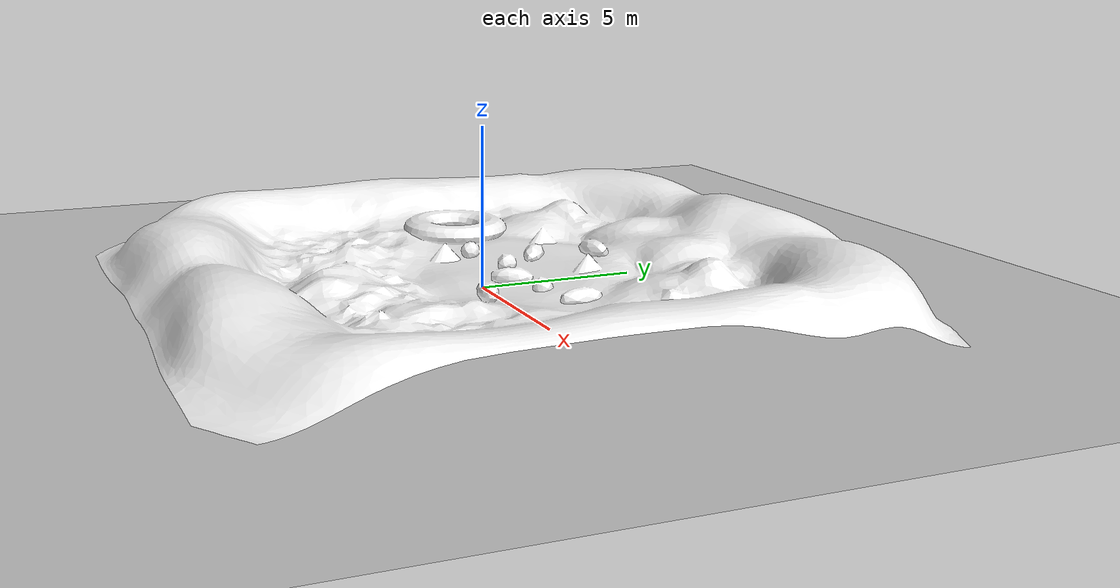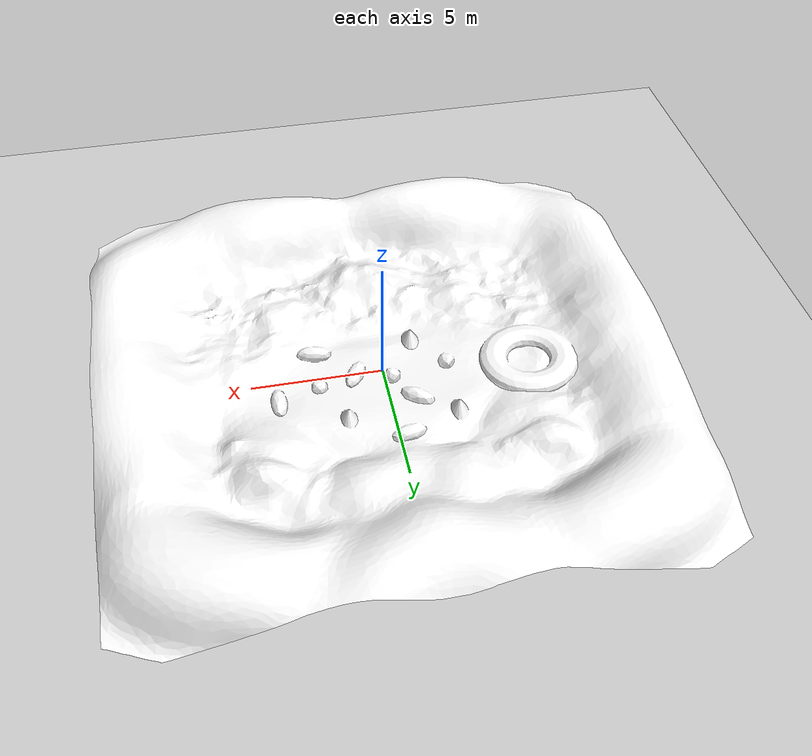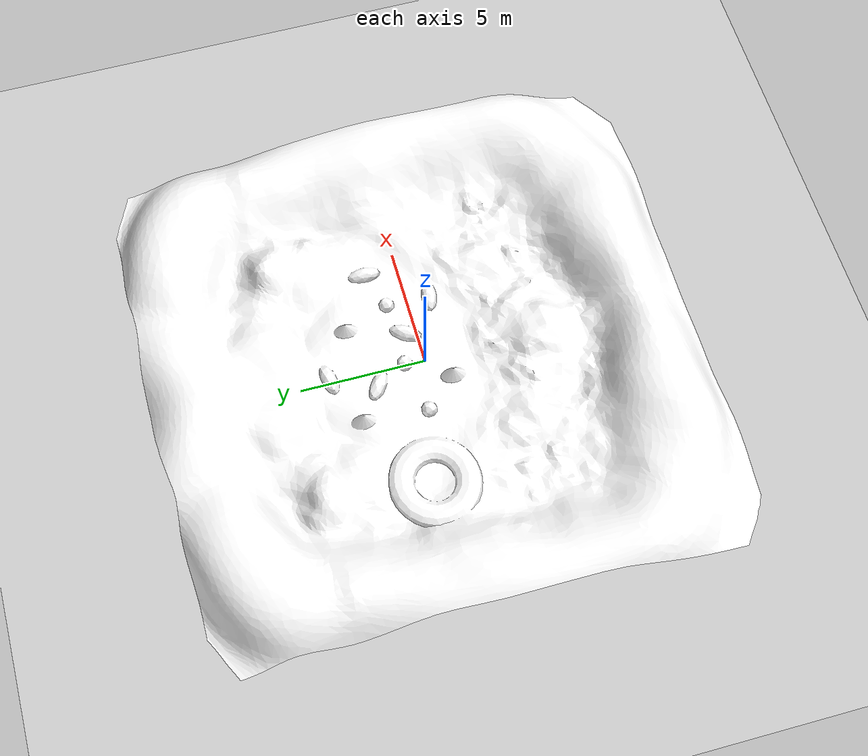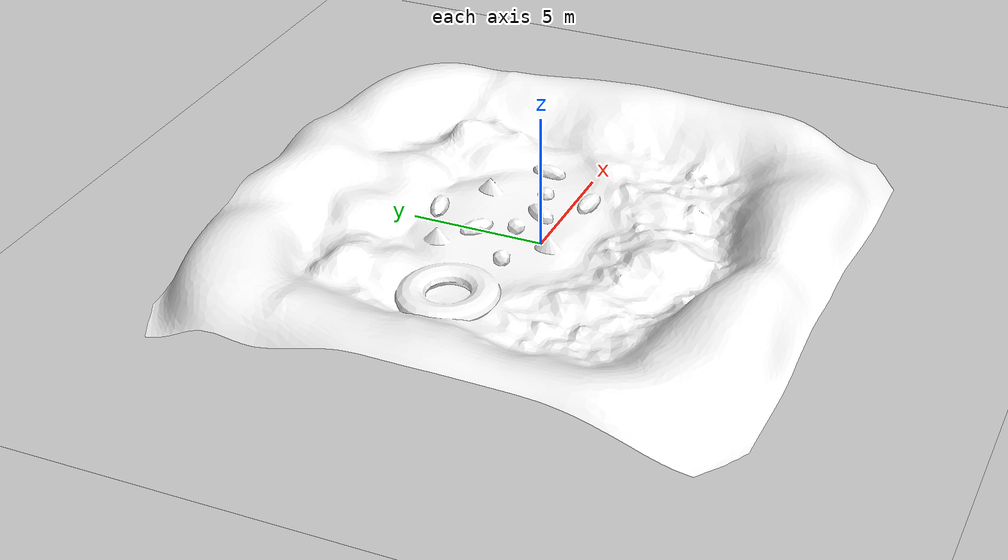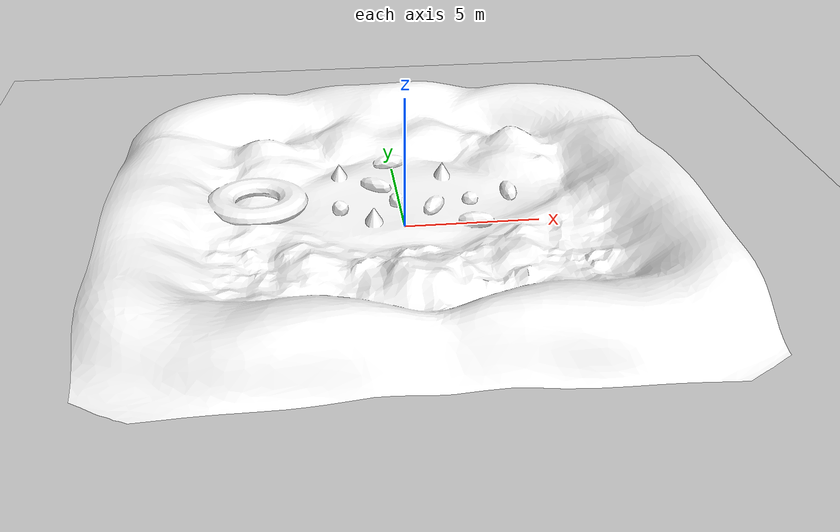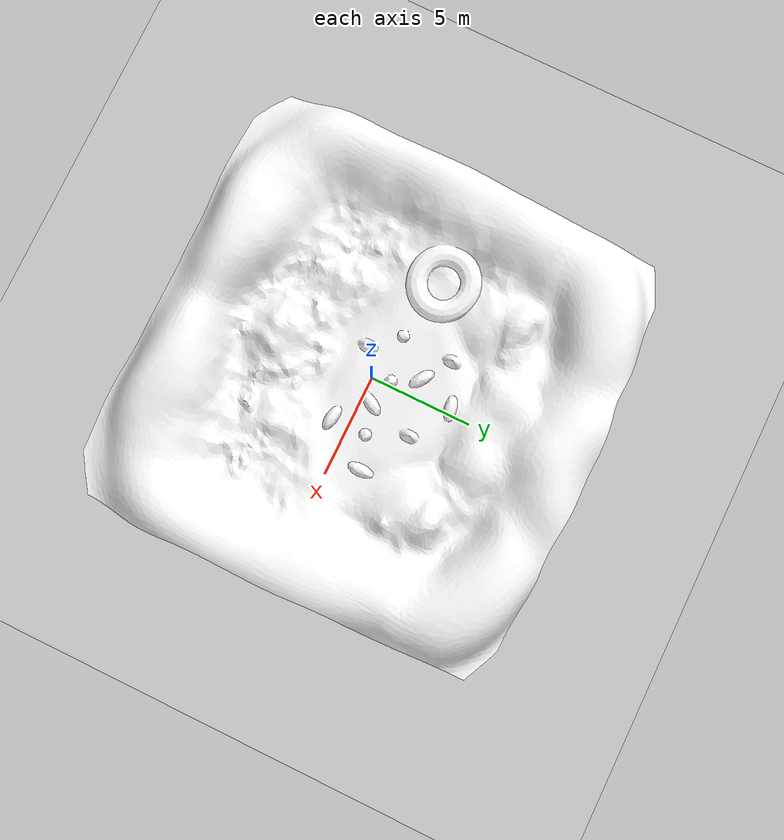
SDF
<sdf version="1.4">
 <world name="default">
  <light name="sun" type="directional">
   <pose>0 0 10 0 -0 0</pose>
   <diffuse>0.8 0.8 0.8 1</diffuse>
   <specular>0.2 0.2 0.2 1</specular>
   <attenuation>
    <range>1000</range>
    <constant>0.9</constant>
    <linear>0.01</linear>
    <quadratic>0.001</quadratic>
   </attenuation>
   <direction>-0.5 0.1 -0.9</direction>
   <spot><inner_angle>0</inner_angle><outer_angle>0</outer_angle><falloff>0</falloff></spot>
  </light>
  <model name="ground_plane">
   <static>1</static>
   <link name="link">
    <collision name="collision">
     <geometry><plane><normal>0 0 1</normal><size>100 100</size></plane></geometry>
     <surface>
      <contact><collide_bitmask>65535</collide_bitmask></contact>
      <friction><ode><mu>100</mu><mu2>50</mu2></ode></friction>
     </surface>
    </collision>
    <visual name="visual">
     <cast_shadows>0</cast_shadows>
     <geometry><plane><normal>0 0 1</normal><size>100 100</size></plane></geometry>
     <material>
      <script><uri>file://media/materials/scripts/gazebo.material</uri><name>Gazebo/Grey</name></script>
     </material>
    </visual>
   </link>
  </model>
  <gravity>0 0 -9.8</gravity>
  <magnetic_field>6e-06 2.3e-05 -4.2e-05</magnetic_field>
  <atmosphere type="adiabatic"/>
  <physics type="ode">
   <max_step_size>0.001</max_step_size>
   <real_time_factor>1</real_time_factor>
   <real_time_update_rate>1000</real_time_update_rate>
  </physics>
  <scene><ambient>0.4 0.4 0.4 1</ambient><background>0.7 0.7 0.7 1</background><shadows>1</shadows></scene>
  <spherical_coordinates>
   <surface_model>EARTH_WGS84</surface_model>
   <latitude_deg>0</latitude_deg>
   <longitude_deg>0</longitude_deg>
   <elevation>0</elevation>
   <heading_deg>0</heading_deg>
  </spherical_coordinates>
  <model name="mapa_rover">
   <pose>0 0 1.4 0 0 0</pose>
   <static>1</static>
   <link name="link">
    <collision name="collision">
     <geometry><mesh><uri>model://mapa_rover/meshes/mapa_2.dae</uri><scale>2 2 2</scale></mesh></geometry>
     <surface>
      <contact><collide_bitmask>65535</collide_bitmask></contact>
      <friction><ode><mu>100</mu><mu2>50</mu2></ode></friction>
     </surface>
    </collision>
    <visual name="visual">
     <geometry><mesh><uri>model://mapa_rover/meshes/mapa_2.dae</uri><scale>2 2 2</scale></mesh></geometry>
     <material>
      <script>
       <uri>model://mapa_rover/materials/textures/</uri>
       <uri>model://mapa_rover/materials/scripts/</uri>
       <name>RyCSV/mapatest</name>
      </script>
      <ambient>1 1 1 1</ambient>
      <diffuse>1 1 1 1</diffuse>
      <specular>1 1 1 1</specular>
      <emissive>0 0 0 1</emissive>
     </material>
    </visual>
   </link>
  </model>
 </world>
</sdf>
